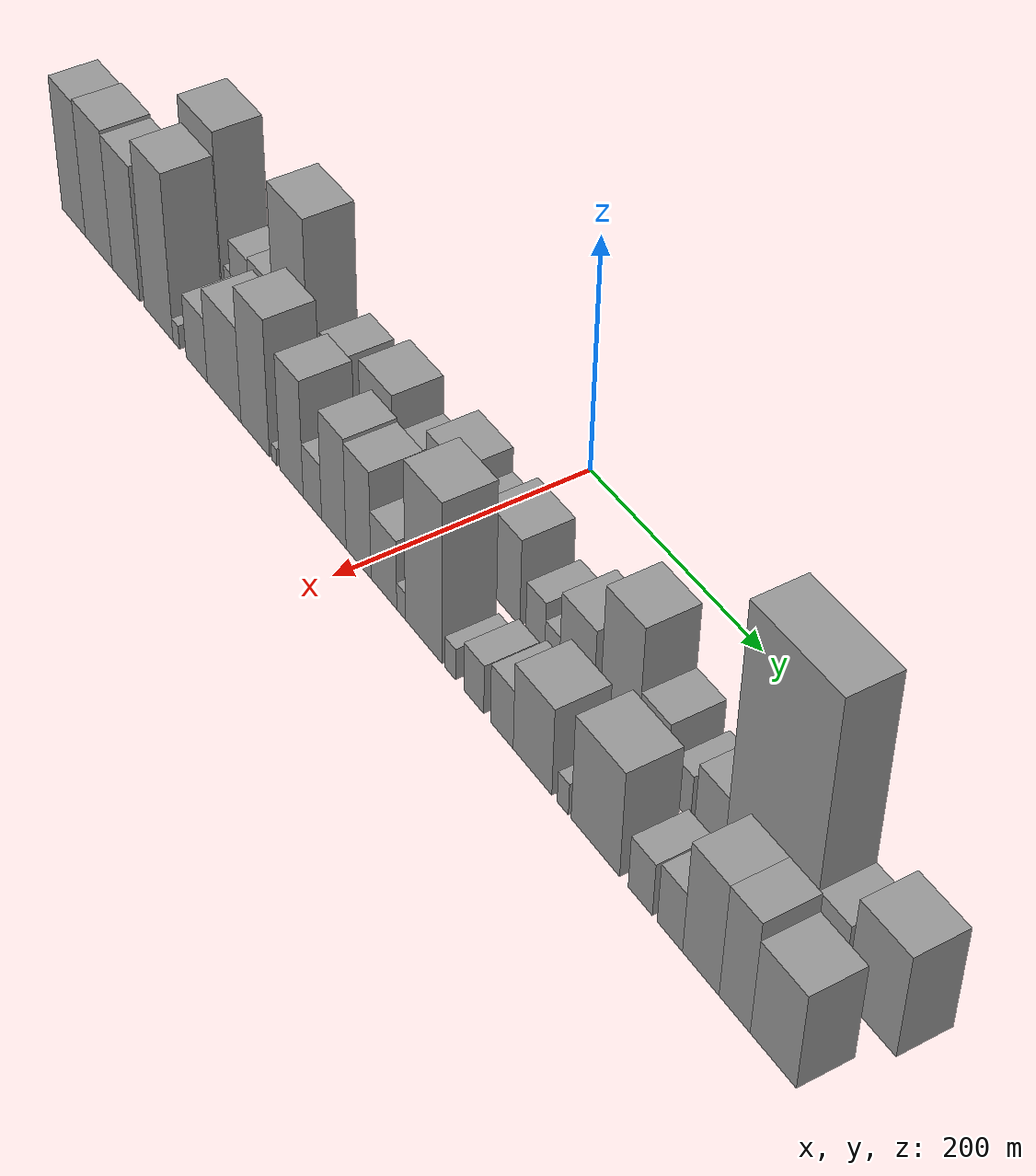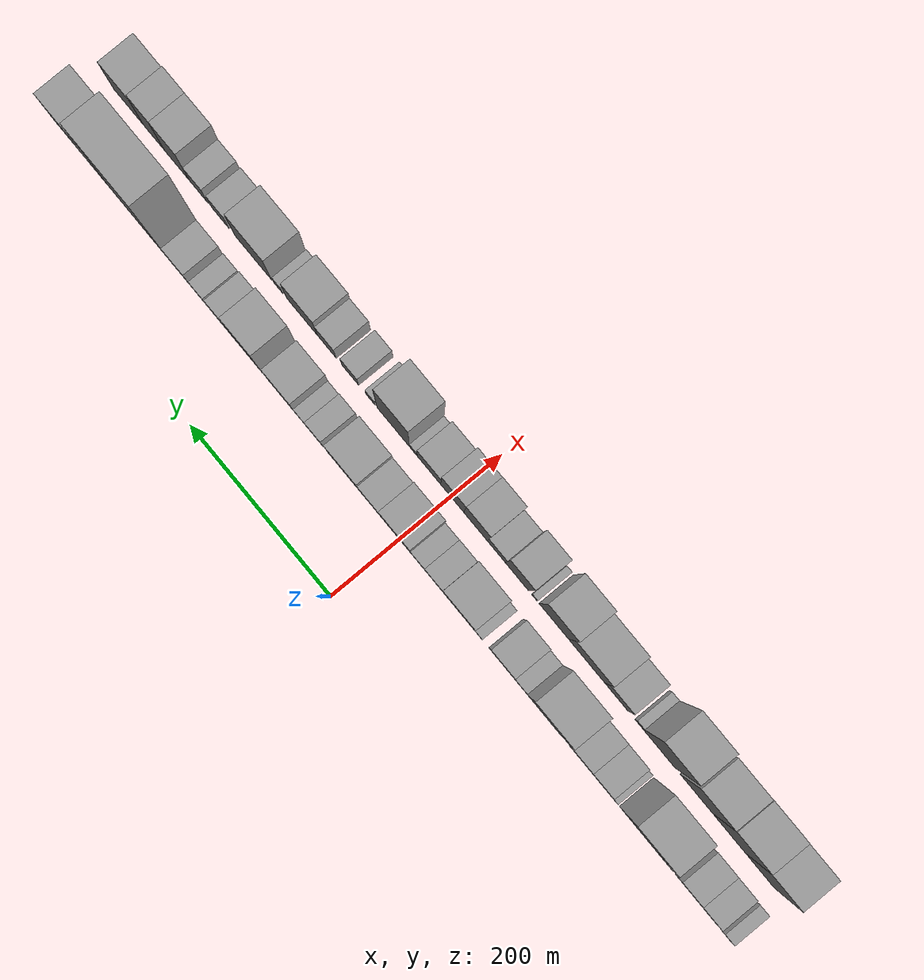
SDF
<sdf version="1.6">
 <world name="default">
  <scene>
   <sky><clouds><speed>12</speed></clouds></sky>
   <ambient>0.4 0.4 0.4 1</ambient>
   <background>0.7 0.7 0.7 1</background>
   <shadows>1</shadows>
  </scene>
  <gravity>0 0 -9.8066</gravity>
  <magnetic_field>6e-06 2.3e-05 -4.2e-05</magnetic_field>
  <physics default="0" name="default_physics" type="ode">
   <ode>
    <solver>
     <type>quick</type>
     <iters>10</iters>
     <sor>1.0</sor>
     <use_dynamic_moi_rescaling>0</use_dynamic_moi_rescaling>
    </solver>
    <constraints>
     <cfm>0</cfm>
     <erp>0.2</erp>
     <contact_max_correcting_vel>100</contact_max_correcting_vel>
     <contact_surface_layer>0.001</contact_surface_layer>
    </constraints>
   </ode>
   <max_step_size>0.004</max_step_size>
   <real_time_factor>1</real_time_factor>
   <real_time_update_rate>250</real_time_update_rate>
  </physics>
  <light name="sun" type="directional">
   <pose>0 0 10 0 0 0</pose>
   <diffuse>0.8 0.8 0.8 1</diffuse>
   <specular>0.2 0.2 0.2 1</specular>
   <attenuation>
    <range>1000</range>
    <constant>0.9</constant>
    <linear>0.01</linear>
    <quadratic>0.001</quadratic>
   </attenuation>
   <direction>-0.5 0.1 -0.9</direction>
  </light>
  <model name="building_1">
   <static>1</static>
   <pose>100.0000 -453.5102 0 0.000000 0.000000 0.000000</pose>
   <link name="link">
    <pose>0 0 13.50 0 0 0</pose>
    <collision name="collision"><geometry><box><size>40.0000 12.9796 27.0000</size></box></geometry></collision>
    <visual name="visual">
     <cast_shadows>0</cast_shadows>
     <geometry><box><size>40.0000 12.9796 27.0000</size></box></geometry>
     <material>
      <script>
       <uri>model://grey_wall/materials/scripts</uri>
       <uri>model://grey_wall/materials/textures</uri>
       <name>vrc/grey_wall</name>
      </script>
     </material>
    </visual>
   </link>
  </model>
  <model name="building_2">
   <static>1</static>
   <pose>100.0000 -425.6688 0 0.000000 0.000000 0.000000</pose>
   <link name="link">
    <pose>0 0 22.50 0 0 0</pose>
    <collision name="collision"><geometry><box><size>40.0000 26.7033 45.0000</size></box></geometry></collision>
    <visual name="visual">
     <cast_shadows>0</cast_shadows>
     <geometry><box><size>40.0000 26.7033 45.0000</size></box></geometry>
     <material>
      <script>
       <uri>model://grey_wall/materials/scripts</uri>
       <uri>model://grey_wall/materials/textures</uri>
       <name>vrc/grey_wall</name>
      </script>
     </material>
    </visual>
   </link>
  </model>
  <model name="building_3">
   <static>1</static>
   <pose>100.0000 -398.4008 0 0.000000 0.000000 0.000000</pose>
   <link name="link">
    <pose>0 0 24.00 0 0 0</pose>
    <collision name="collision"><geometry><box><size>40.0000 27.8327 48.0000</size></box></geometry></collision>
    <visual name="visual">
     <cast_shadows>0</cast_shadows>
     <geometry><box><size>40.0000 27.8327 48.0000</size></box></geometry>
     <material>
      <script>
       <uri>model://grey_wall/materials/scripts</uri>
       <uri>model://grey_wall/materials/textures</uri>
       <name>vrc/grey_wall</name>
      </script>
     </material>
    </visual>
   </link>
  </model>
  <model name="building_4">
   <static>1</static>
   <pose>100.0000 -368.6258 0 0.000000 0.000000 0.000000</pose>
   <link name="link">
    <pose>0 0 15.00 0 0 0</pose>
    <collision name="collision"><geometry><box><size>40.0000 15.7172 30.0000</size></box></geometry></collision>
    <visual name="visual">
     <cast_shadows>0</cast_shadows>
     <geometry><box><size>40.0000 15.7172 30.0000</size></box></geometry>
     <material>
      <script>
       <uri>model://grey_wall/materials/scripts</uri>
       <uri>model://grey_wall/materials/textures</uri>
       <name>vrc/grey_wall</name>
      </script>
     </material>
    </visual>
   </link>
  </model>
  <model name="building_5">
   <static>1</static>
   <pose>100.0000 -334.2858 0 0.000000 0.000000 0.000000</pose>
   <link name="link">
    <pose>0 0 67.50 0 0 0</pose>
    <collision name="collision"><geometry><box><size>40.0000 52.9629 135.0000</size></box></geometry></collision>
    <visual name="visual">
     <cast_shadows>0</cast_shadows>
     <geometry><box><size>40.0000 52.9629 135.0000</size></box></geometry>
     <material>
      <script>
       <uri>model://grey_wall/materials/scripts</uri>
       <uri>model://grey_wall/materials/textures</uri>
       <name>vrc/grey_wall</name>
      </script>
     </material>
    </visual>
   </link>
  </model>
  <model name="building_6">
   <static>1</static>
   <pose>100.0000 -297.6774 0 0.000000 0.000000 0.000000</pose>
   <link name="link">
    <pose>0 0 10.50 0 0 0</pose>
    <collision name="collision"><geometry><box><size>40.0000 10.2538 21.0000</size></box></geometry></collision>
    <visual name="visual">
     <cast_shadows>0</cast_shadows>
     <geometry><box><size>40.0000 10.2538 21.0000</size></box></geometry>
     <material>
      <script>
       <uri>model://grey_wall/materials/scripts</uri>
       <uri>model://grey_wall/materials/textures</uri>
       <name>vrc/grey_wall</name>
      </script>
     </material>
    </visual>
   </link>
  </model>
  <model name="building_7">
   <static>1</static>
   <pose>100.0000 -278.2474 0 0.000000 0.000000 0.000000</pose>
   <link name="link">
    <pose>0 0 25.50 0 0 0</pose>
    <collision name="collision"><geometry><box><size>40.0000 28.6063 51.0000</size></box></geometry></collision>
    <visual name="visual">
     <cast_shadows>0</cast_shadows>
     <geometry><box><size>40.0000 28.6063 51.0000</size></box></geometry>
     <material>
      <script>
       <uri>model://grey_wall/materials/scripts</uri>
       <uri>model://grey_wall/materials/textures</uri>
       <name>vrc/grey_wall</name>
      </script>
     </material>
    </visual>
   </link>
  </model>
  <model name="building_8">
   <static>1</static>
   <pose>100.0000 -250.4310 0 0.000000 0.000000 0.000000</pose>
   <link name="link">
    <pose>0 0 27.00 0 0 0</pose>
    <collision name="collision"><geometry><box><size>40.0000 27.0266 54.0000</size></box></geometry></collision>
    <visual name="visual">
     <cast_shadows>0</cast_shadows>
     <geometry><box><size>40.0000 27.0266 54.0000</size></box></geometry>
     <material>
      <script>
       <uri>model://grey_wall/materials/scripts</uri>
       <uri>model://grey_wall/materials/textures</uri>
       <name>vrc/grey_wall</name>
      </script>
     </material>
    </visual>
   </link>
  </model>
  <model name="building_9">
   <static>1</static>
   <pose>100.0000 -201.9144 0 0.000000 0.000000 0.000000</pose>
   <link name="link">
    <pose>0 0 72.00 0 0 0</pose>
    <collision name="collision"><geometry><box><size>40.0000 50.0067 144.0000</size></box></geometry></collision>
    <visual name="visual">
     <cast_shadows>0</cast_shadows>
     <geometry><box><size>40.0000 50.0067 144.0000</size></box></geometry>
     <material>
      <script>
       <uri>model://grey_wall/materials/scripts</uri>
       <uri>model://grey_wall/materials/textures</uri>
       <name>vrc/grey_wall</name>
      </script>
     </material>
    </visual>
   </link>
  </model>
  <model name="building_10">
   <static>1</static>
   <pose>100.0000 -167.6669 0 0.000000 0.000000 0.000000</pose>
   <link name="link">
    <pose>0 0 18.00 0 0 0</pose>
    <collision name="collision"><geometry><box><size>40.0000 18.4882 36.0000</size></box></geometry></collision>
    <visual name="visual">
     <cast_shadows>0</cast_shadows>
     <geometry><box><size>40.0000 18.4882 36.0000</size></box></geometry>
     <material>
      <script>
       <uri>model://grey_wall/materials/scripts</uri>
       <uri>model://grey_wall/materials/textures</uri>
       <name>vrc/grey_wall</name>
      </script>
     </material>
    </visual>
   </link>
  </model>
  <model name="building_11">
   <static>1</static>
   <pose>100.0000 -142.0239 0 0.000000 0.000000 0.000000</pose>
   <link name="link">
    <pose>0 0 30.00 0 0 0</pose>
    <collision name="collision"><geometry><box><size>40.0000 32.7978 60.0000</size></box></geometry></collision>
    <visual name="visual">
     <cast_shadows>0</cast_shadows>
     <geometry><box><size>40.0000 32.7978 60.0000</size></box></geometry>
     <material>
      <script>
       <uri>model://grey_wall/materials/scripts</uri>
       <uri>model://grey_wall/materials/textures</uri>
       <name>vrc/grey_wall</name>
      </script>
     </material>
    </visual>
   </link>
  </model>
  <model name="building_12">
   <static>1</static>
   <pose>100.0000 -109.8862 0 0.000000 0.000000 0.000000</pose>
   <link name="link">
    <pose>0 0 12.00 0 0 0</pose>
    <collision name="collision"><geometry><box><size>40.0000 11.4776 24.0000</size></box></geometry></collision>
    <visual name="visual">
     <cast_shadows>0</cast_shadows>
     <geometry><box><size>40.0000 11.4776 24.0000</size></box></geometry>
     <material>
      <script>
       <uri>model://grey_wall/materials/scripts</uri>
       <uri>model://grey_wall/materials/textures</uri>
       <name>vrc/grey_wall</name>
      </script>
     </material>
    </visual>
   </link>
  </model>
  <model name="building_13">
   <static>1</static>
   <pose>100.0000 -82.1685 0 0.000000 0.000000 0.000000</pose>
   <link name="link">
    <pose>0 0 37.50 0 0 0</pose>
    <collision name="collision"><geometry><box><size>40.0000 43.9578 75.0000</size></box></geometry></collision>
    <visual name="visual">
     <cast_shadows>0</cast_shadows>
     <geometry><box><size>40.0000 43.9578 75.0000</size></box></geometry>
     <material>
      <script>
       <uri>model://grey_wall/materials/scripts</uri>
       <uri>model://grey_wall/materials/textures</uri>
       <name>vrc/grey_wall</name>
      </script>
     </material>
    </visual>
   </link>
  </model>
  <model name="building_14">
   <static>1</static>
   <pose>100.0000 -47.7498 0 0.000000 0.000000 0.000000</pose>
   <link name="link">
    <pose>0 0 21.00 0 0 0</pose>
    <collision name="collision"><geometry><box><size>40.0000 24.8795 42.0000</size></box></geometry></collision>
    <visual name="visual">
     <cast_shadows>0</cast_shadows>
     <geometry><box><size>40.0000 24.8795 42.0000</size></box></geometry>
     <material>
      <script>
       <uri>model://grey_wall/materials/scripts</uri>
       <uri>model://grey_wall/materials/textures</uri>
       <name>vrc/grey_wall</name>
      </script>
     </material>
    </visual>
   </link>
  </model>
  <model name="building_15">
   <static>1</static>
   <pose>100.0000 -25.5323 0 0.000000 0.000000 0.000000</pose>
   <link name="link">
    <pose>0 0 18.00 0 0 0</pose>
    <collision name="collision"><geometry><box><size>40.0000 19.5555 36.0000</size></box></geometry></collision>
    <visual name="visual">
     <cast_shadows>0</cast_shadows>
     <geometry><box><size>40.0000 19.5555 36.0000</size></box></geometry>
     <material>
      <script>
       <uri>model://grey_wall/materials/scripts</uri>
       <uri>model://grey_wall/materials/textures</uri>
       <name>vrc/grey_wall</name>
      </script>
     </material>
    </visual>
   </link>
  </model>
  <model name="building_16">
   <static>1</static>
   <pose>100.0000 5.6873 0 0.000000 0.000000 0.000000</pose>
   <link name="link">
    <pose>0 0 39.00 0 0 0</pose>
    <collision name="collision"><geometry><box><size>40.0000 42.8835 78.0000</size></box></geometry></collision>
    <visual name="visual">
     <cast_shadows>0</cast_shadows>
     <geometry><box><size>40.0000 42.8835 78.0000</size></box></geometry>
     <material>
      <script>
       <uri>model://grey_wall/materials/scripts</uri>
       <uri>model://grey_wall/materials/textures</uri>
       <name>vrc/grey_wall</name>
      </script>
     </material>
    </visual>
   </link>
  </model>
  <model name="building_17">
   <static>1</static>
   <pose>100.0000 41.9869 0 0.000000 0.000000 0.000000</pose>
   <link name="link">
    <pose>0 0 28.50 0 0 0</pose>
    <collision name="collision"><geometry><box><size>40.0000 29.7157 57.0000</size></box></geometry></collision>
    <visual name="visual">
     <cast_shadows>0</cast_shadows>
     <geometry><box><size>40.0000 29.7157 57.0000</size></box></geometry>
     <material>
      <script>
       <uri>model://grey_wall/materials/scripts</uri>
       <uri>model://grey_wall/materials/textures</uri>
       <name>vrc/grey_wall</name>
      </script>
     </material>
    </visual>
   </link>
  </model>
  <model name="building_18">
   <static>1</static>
   <pose>100.0000 78.9703 0 0.000000 0.000000 0.000000</pose>
   <link name="link">
    <pose>0 0 37.50 0 0 0</pose>
    <collision name="collision"><geometry><box><size>40.0000 44.2512 75.0000</size></box></geometry></collision>
    <visual name="visual">
     <cast_shadows>0</cast_shadows>
     <geometry><box><size>40.0000 44.2512 75.0000</size></box></geometry>
     <material>
      <script>
       <uri>model://grey_wall/materials/scripts</uri>
       <uri>model://grey_wall/materials/textures</uri>
       <name>vrc/grey_wall</name>
      </script>
     </material>
    </visual>
   </link>
  </model>
  <model name="building_19">
   <static>1</static>
   <pose>100.0000 119.3882 0 0.000000 0.000000 0.000000</pose>
   <link name="link">
    <pose>0 0 22.50 0 0 0</pose>
    <collision name="collision"><geometry><box><size>40.0000 22.5846 45.0000</size></box></geometry></collision>
    <visual name="visual">
     <cast_shadows>0</cast_shadows>
     <geometry><box><size>40.0000 22.5846 45.0000</size></box></geometry>
     <material>
      <script>
       <uri>model://grey_wall/materials/scripts</uri>
       <uri>model://grey_wall/materials/textures</uri>
       <name>vrc/grey_wall</name>
      </script>
     </material>
    </visual>
   </link>
  </model>
  <model name="building_20">
   <static>1</static>
   <pose>100.0000 139.2264 0 0.000000 0.000000 0.000000</pose>
   <link name="link">
    <pose>0 0 15.00 0 0 0</pose>
    <collision name="collision"><geometry><box><size>40.0000 17.0919 30.0000</size></box></geometry></collision>
    <visual name="visual">
     <cast_shadows>0</cast_shadows>
     <geometry><box><size>40.0000 17.0919 30.0000</size></box></geometry>
     <material>
      <script>
       <uri>model://grey_wall/materials/scripts</uri>
       <uri>model://grey_wall/materials/textures</uri>
       <name>vrc/grey_wall</name>
      </script>
     </material>
    </visual>
   </link>
  </model>
  <model name="building_21">
   <static>1</static>
   <pose>100.0000 167.3817 0 0.000000 0.000000 0.000000</pose>
   <link name="link">
    <pose>0 0 34.50 0 0 0</pose>
    <collision name="collision"><geometry><box><size>40.0000 39.2186 69.0000</size></box></geometry></collision>
    <visual name="visual">
     <cast_shadows>0</cast_shadows>
     <geometry><box><size>40.0000 39.2186 69.0000</size></box></geometry>
     <material>
      <script>
       <uri>model://grey_wall/materials/scripts</uri>
       <uri>model://grey_wall/materials/textures</uri>
       <name>vrc/grey_wall</name>
      </script>
     </material>
    </visual>
   </link>
  </model>
  <model name="building_22">
   <static>1</static>
   <pose>100.0000 214.9814 0 0.000000 0.000000 0.000000</pose>
   <link name="link">
    <pose>0 0 57.00 0 0 0</pose>
    <collision name="collision"><geometry><box><size>40.0000 41.9810 114.0000</size></box></geometry></collision>
    <visual name="visual">
     <cast_shadows>0</cast_shadows>
     <geometry><box><size>40.0000 41.9810 114.0000</size></box></geometry>
     <material>
      <script>
       <uri>model://grey_wall/materials/scripts</uri>
       <uri>model://grey_wall/materials/textures</uri>
       <name>vrc/grey_wall</name>
      </script>
     </material>
    </visual>
   </link>
  </model>
  <model name="building_23">
   <static>1</static>
   <pose>100.0000 251.5393 0 0.000000 0.000000 0.000000</pose>
   <link name="link">
    <pose>0 0 30.00 0 0 0</pose>
    <collision name="collision"><geometry><box><size>40.0000 31.1348 60.0000</size></box></geometry></collision>
    <visual name="visual">
     <cast_shadows>0</cast_shadows>
     <geometry><box><size>40.0000 31.1348 60.0000</size></box></geometry>
     <material>
      <script>
       <uri>model://grey_wall/materials/scripts</uri>
       <uri>model://grey_wall/materials/textures</uri>
       <name>vrc/grey_wall</name>
      </script>
     </material>
    </visual>
   </link>
  </model>
  <model name="building_24">
   <static>1</static>
   <pose>100.0000 283.1219 0 0.000000 0.000000 0.000000</pose>
   <link name="link">
    <pose>0 0 19.50 0 0 0</pose>
    <collision name="collision"><geometry><box><size>40.0000 20.0305 39.0000</size></box></geometry></collision>
    <visual name="visual">
     <cast_shadows>0</cast_shadows>
     <geometry><box><size>40.0000 20.0305 39.0000</size></box></geometry>
     <material>
      <script>
       <uri>model://grey_wall/materials/scripts</uri>
       <uri>model://grey_wall/materials/textures</uri>
       <name>vrc/grey_wall</name>
      </script>
     </material>
    </visual>
   </link>
  </model>
  <model name="building_25">
   <static>1</static>
   <pose>100.0000 312.4607 0 0.000000 0.000000 0.000000</pose>
   <link name="link">
    <pose>0 0 27.00 0 0 0</pose>
    <collision name="collision"><geometry><box><size>40.0000 30.6471 54.0000</size></box></geometry></collision>
    <visual name="visual">
     <cast_shadows>0</cast_shadows>
     <geometry><box><size>40.0000 30.6471 54.0000</size></box></geometry>
     <material>
      <script>
       <uri>model://grey_wall/materials/scripts</uri>
       <uri>model://grey_wall/materials/textures</uri>
       <name>vrc/grey_wall</name>
      </script>
     </material>
    </visual>
   </link>
  </model>
  <model name="building_26">
   <static>1</static>
   <pose>100.0000 370.7109 0 0.000000 0.000000 0.000000</pose>
   <link name="link">
    <pose>0 0 108.00 0 0 0</pose>
    <collision name="collision"><geometry><box><size>40.0000 85.8532 216.0000</size></box></geometry></collision>
    <visual name="visual">
     <cast_shadows>0</cast_shadows>
     <geometry><box><size>40.0000 85.8532 216.0000</size></box></geometry>
     <material>
      <script>
       <uri>model://grey_wall/materials/scripts</uri>
       <uri>model://grey_wall/materials/textures</uri>
       <name>vrc/grey_wall</name>
      </script>
     </material>
    </visual>
   </link>
  </model>
  <model name="building_27">
   <static>1</static>
   <pose>100.0000 428.7281 0 0.000000 0.000000 0.000000</pose>
   <link name="link">
    <pose>0 0 30.00 0 0 0</pose>
    <collision name="collision"><geometry><box><size>40.0000 30.1812 60.0000</size></box></geometry></collision>
    <visual name="visual">
     <cast_shadows>0</cast_shadows>
     <geometry><box><size>40.0000 30.1812 60.0000</size></box></geometry>
     <material>
      <script>
       <uri>model://grey_wall/materials/scripts</uri>
       <uri>model://grey_wall/materials/textures</uri>
       <name>vrc/grey_wall</name>
      </script>
     </material>
    </visual>
   </link>
  </model>
  <model name="building_28">
   <static>1</static>
   <pose>100.0000 470.3922 0 0.000000 0.000000 0.000000</pose>
   <link name="link">
    <pose>0 0 43.50 0 0 0</pose>
    <collision name="collision"><geometry><box><size>40.0000 47.1470 87.0000</size></box></geometry></collision>
    <visual name="visual">
     <cast_shadows>0</cast_shadows>
     <geometry><box><size>40.0000 47.1470 87.0000</size></box></geometry>
     <material>
      <script>
       <uri>model://grey_wall/materials/scripts</uri>
       <uri>model://grey_wall/materials/textures</uri>
       <name>vrc/grey_wall</name>
      </script>
     </material>
    </visual>
   </link>
  </model>
  <model name="building_29">
   <static>1</static>
   <pose>160.0000 -430.1446 0 0.000000 0.000000 0.000000</pose>
   <link name="link">
    <pose>0 0 60.00 0 0 0</pose>
    <collision name="collision"><geometry><box><size>40.0000 39.7107 120.0000</size></box></geometry></collision>
    <visual name="visual">
     <cast_shadows>0</cast_shadows>
     <geometry><box><size>40.0000 39.7107 120.0000</size></box></geometry>
     <material>
      <script>
       <uri>model://grey_wall/materials/scripts</uri>
       <uri>model://grey_wall/materials/textures</uri>
       <name>vrc/grey_wall</name>
      </script>
     </material>
    </visual>
   </link>
  </model>
  <model name="building_30">
   <static>1</static>
   <pose>160.0000 -387.6719 0 0.000000 0.000000 0.000000</pose>
   <link name="link">
    <pose>0 0 61.50 0 0 0</pose>
    <collision name="collision"><geometry><box><size>40.0000 45.2346 123.0000</size></box></geometry></collision>
    <visual name="visual">
     <cast_shadows>0</cast_shadows>
     <geometry><box><size>40.0000 45.2346 123.0000</size></box></geometry>
     <material>
      <script>
       <uri>model://grey_wall/materials/scripts</uri>
       <uri>model://grey_wall/materials/textures</uri>
       <name>vrc/grey_wall</name>
      </script>
     </material>
    </visual>
   </link>
  </model>
  <model name="building_31">
   <static>1</static>
   <pose>160.0000 -342.6383 0 0.000000 0.000000 0.000000</pose>
   <link name="link">
    <pose>0 0 60.00 0 0 0</pose>
    <collision name="collision"><geometry><box><size>40.0000 44.8327 120.0000</size></box></geometry></collision>
    <visual name="visual">
     <cast_shadows>0</cast_shadows>
     <geometry><box><size>40.0000 44.8327 120.0000</size></box></geometry>
     <material>
      <script>
       <uri>model://grey_wall/materials/scripts</uri>
       <uri>model://grey_wall/materials/textures</uri>
       <name>vrc/grey_wall</name>
      </script>
     </material>
    </visual>
   </link>
  </model>
  <model name="building_32">
   <static>1</static>
   <pose>160.0000 -290.4092 0 0.000000 0.000000 0.000000</pose>
   <link name="link">
    <pose>0 0 73.50 0 0 0</pose>
    <collision name="collision"><geometry><box><size>40.0000 45.6254 147.0000</size></box></geometry></collision>
    <visual name="visual">
     <cast_shadows>0</cast_shadows>
     <geometry><box><size>40.0000 45.6254 147.0000</size></box></geometry>
     <material>
      <script>
       <uri>model://grey_wall/materials/scripts</uri>
       <uri>model://grey_wall/materials/textures</uri>
       <name>vrc/grey_wall</name>
      </script>
     </material>
    </visual>
   </link>
  </model>
  <model name="building_33">
   <static>1</static>
   <pose>160.0000 -262.5299 0 0.000000 0.000000 0.000000</pose>
   <link name="link">
    <pose>0 0 10.50 0 0 0</pose>
    <collision name="collision"><geometry><box><size>40.0000 10.1330 21.0000</size></box></geometry></collision>
    <visual name="visual">
     <cast_shadows>0</cast_shadows>
     <geometry><box><size>40.0000 10.1330 21.0000</size></box></geometry>
     <material>
      <script>
       <uri>model://grey_wall/materials/scripts</uri>
       <uri>model://grey_wall/materials/textures</uri>
       <name>vrc/grey_wall</name>
      </script>
     </material>
    </visual>
   </link>
  </model>
  <model name="building_34">
   <static>1</static>
   <pose>160.0000 -231.2802 0 0.000000 0.000000 0.000000</pose>
   <link name="link">
    <pose>0 0 28.50 0 0 0</pose>
    <collision name="collision"><geometry><box><size>40.0000 32.3664 57.0000</size></box></geometry></collision>
    <visual name="visual">
     <cast_shadows>0</cast_shadows>
     <geometry><box><size>40.0000 32.3664 57.0000</size></box></geometry>
     <material>
      <script>
       <uri>model://grey_wall/materials/scripts</uri>
       <uri>model://grey_wall/materials/textures</uri>
       <name>vrc/grey_wall</name>
      </script>
     </material>
    </visual>
   </link>
  </model>
  <model name="building_35">
   <static>1</static>
   <pose>160.0000 -189.9371 0 0.000000 0.000000 0.000000</pose>
   <link name="link">
    <pose>0 0 42.00 0 0 0</pose>
    <collision name="collision"><geometry><box><size>40.0000 50.3199 84.0000</size></box></geometry></collision>
    <visual name="visual">
     <cast_shadows>0</cast_shadows>
     <geometry><box><size>40.0000 50.3199 84.0000</size></box></geometry>
     <material>
      <script>
       <uri>model://grey_wall/materials/scripts</uri>
       <uri>model://grey_wall/materials/textures</uri>
       <name>vrc/grey_wall</name>
      </script>
     </material>
    </visual>
   </link>
  </model>
  <model name="building_36">
   <static>1</static>
   <pose>160.0000 -144.2736 0 0.000000 0.000000 0.000000</pose>
   <link name="link">
    <pose>0 0 60.00 0 0 0</pose>
    <collision name="collision"><geometry><box><size>40.0000 41.0072 120.0000</size></box></geometry></collision>
    <visual name="visual">
     <cast_shadows>0</cast_shadows>
     <geometry><box><size>40.0000 41.0072 120.0000</size></box></geometry>
     <material>
      <script>
       <uri>model://grey_wall/materials/scripts</uri>
       <uri>model://grey_wall/materials/textures</uri>
       <name>vrc/grey_wall</name>
      </script>
     </material>
    </visual>
   </link>
  </model>
  <model name="building_37">
   <static>1</static>
   <pose>160.0000 -117.0435 0 0.000000 0.000000 0.000000</pose>
   <link name="link">
    <pose>0 0 7.50 0 0 0</pose>
    <collision name="collision"><geometry><box><size>40.0000 7.4530 15.0000</size></box></geometry></collision>
    <visual name="visual">
     <cast_shadows>0</cast_shadows>
     <geometry><box><size>40.0000 7.4530 15.0000</size></box></geometry>
     <material>
      <script>
       <uri>model://grey_wall/materials/scripts</uri>
       <uri>model://grey_wall/materials/textures</uri>
       <name>vrc/grey_wall</name>
      </script>
     </material>
    </visual>
   </link>
  </model>
  <model name="building_38">
   <static>1</static>
   <pose>160.0000 -92.8126 0 0.000000 0.000000 0.000000</pose>
   <link name="link">
    <pose>0 0 51.00 0 0 0</pose>
    <collision name="collision"><geometry><box><size>40.0000 33.0088 102.0000</size></box></geometry></collision>
    <visual name="visual">
     <cast_shadows>0</cast_shadows>
     <geometry><box><size>40.0000 33.0088 102.0000</size></box></geometry>
     <material>
      <script>
       <uri>model://grey_wall/materials/scripts</uri>
       <uri>model://grey_wall/materials/textures</uri>
       <name>vrc/grey_wall</name>
      </script>
     </material>
    </visual>
   </link>
  </model>
  <model name="building_39">
   <static>1</static>
   <pose>160.0000 -63.7380 0 0.000000 0.000000 0.000000</pose>
   <link name="link">
    <pose>0 0 24.00 0 0 0</pose>
    <collision name="collision"><geometry><box><size>40.0000 25.1404 48.0000</size></box></geometry></collision>
    <visual name="visual">
     <cast_shadows>0</cast_shadows>
     <geometry><box><size>40.0000 25.1404 48.0000</size></box></geometry>
     <material>
      <script>
       <uri>model://grey_wall/materials/scripts</uri>
       <uri>model://grey_wall/materials/textures</uri>
       <name>vrc/grey_wall</name>
      </script>
     </material>
    </visual>
   </link>
  </model>
  <model name="building_40">
   <static>1</static>
   <pose>160.0000 -34.6595 0 0.000000 0.000000 0.000000</pose>
   <link name="link">
    <pose>0 0 48.00 0 0 0</pose>
    <collision name="collision"><geometry><box><size>40.0000 33.0166 96.0000</size></box></geometry></collision>
    <visual name="visual">
     <cast_shadows>0</cast_shadows>
     <geometry><box><size>40.0000 33.0166 96.0000</size></box></geometry>
     <material>
      <script>
       <uri>model://grey_wall/materials/scripts</uri>
       <uri>model://grey_wall/materials/textures</uri>
       <name>vrc/grey_wall</name>
      </script>
     </material>
    </visual>
   </link>
  </model>
  <model name="building_41">
   <static>1</static>
   <pose>160.0000 -1.7504 0 0.000000 0.000000 0.000000</pose>
   <link name="link">
    <pose>0 0 46.50 0 0 0</pose>
    <collision name="collision"><geometry><box><size>40.0000 32.8015 93.0000</size></box></geometry></collision>
    <visual name="visual">
     <cast_shadows>0</cast_shadows>
     <geometry><box><size>40.0000 32.8015 93.0000</size></box></geometry>
     <material>
      <script>
       <uri>model://grey_wall/materials/scripts</uri>
       <uri>model://grey_wall/materials/textures</uri>
       <name>vrc/grey_wall</name>
      </script>
     </material>
    </visual>
   </link>
  </model>
  <model name="building_42">
   <static>1</static>
   <pose>160.0000 31.2134 0 0.000000 0.000000 0.000000</pose>
   <link name="link">
    <pose>0 0 30.00 0 0 0</pose>
    <collision name="collision"><geometry><box><size>40.0000 33.1262 60.0000</size></box></geometry></collision>
    <visual name="visual">
     <cast_shadows>0</cast_shadows>
     <geometry><box><size>40.0000 33.1262 60.0000</size></box></geometry>
     <material>
      <script>
       <uri>model://grey_wall/materials/scripts</uri>
       <uri>model://grey_wall/materials/textures</uri>
       <name>vrc/grey_wall</name>
      </script>
     </material>
    </visual>
   </link>
  </model>
  <model name="building_43">
   <static>1</static>
   <pose>160.0000 53.2136 0 0.000000 0.000000 0.000000</pose>
   <link name="link">
    <pose>0 0 12.00 0 0 0</pose>
    <collision name="collision"><geometry><box><size>40.0000 10.8741 24.0000</size></box></geometry></collision>
    <visual name="visual">
     <cast_shadows>0</cast_shadows>
     <geometry><box><size>40.0000 10.8741 24.0000</size></box></geometry>
     <material>
      <script>
       <uri>model://grey_wall/materials/scripts</uri>
       <uri>model://grey_wall/materials/textures</uri>
       <name>vrc/grey_wall</name>
      </script>
     </material>
    </visual>
   </link>
  </model>
  <model name="building_44">
   <static>1</static>
   <pose>160.0000 81.5214 0 0.000000 0.000000 0.000000</pose>
   <link name="link">
    <pose>0 0 69.00 0 0 0</pose>
    <collision name="collision"><geometry><box><size>40.0000 45.7415 138.0000</size></box></geometry></collision>
    <visual name="visual">
     <cast_shadows>0</cast_shadows>
     <geometry><box><size>40.0000 45.7415 138.0000</size></box></geometry>
     <material>
      <script>
       <uri>model://grey_wall/materials/scripts</uri>
       <uri>model://grey_wall/materials/textures</uri>
       <name>vrc/grey_wall</name>
      </script>
     </material>
    </visual>
   </link>
  </model>
  <model name="building_45">
   <static>1</static>
   <pose>160.0000 114.0788 0 0.000000 0.000000 0.000000</pose>
   <link name="link">
    <pose>0 0 13.50 0 0 0</pose>
    <collision name="collision"><geometry><box><size>40.0000 13.3734 27.0000</size></box></geometry></collision>
    <visual name="visual">
     <cast_shadows>0</cast_shadows>
     <geometry><box><size>40.0000 13.3734 27.0000</size></box></geometry>
     <material>
      <script>
       <uri>model://grey_wall/materials/scripts</uri>
       <uri>model://grey_wall/materials/textures</uri>
       <name>vrc/grey_wall</name>
      </script>
     </material>
    </visual>
   </link>
  </model>
  <model name="building_46">
   <static>1</static>
   <pose>160.0000 142.6858 0 0.000000 0.000000 0.000000</pose>
   <link name="link">
    <pose>0 0 21.00 0 0 0</pose>
    <collision name="collision"><geometry><box><size>40.0000 23.8406 42.0000</size></box></geometry></collision>
    <visual name="visual">
     <cast_shadows>0</cast_shadows>
     <geometry><box><size>40.0000 23.8406 42.0000</size></box></geometry>
     <material>
      <script>
       <uri>model://grey_wall/materials/scripts</uri>
       <uri>model://grey_wall/materials/textures</uri>
       <name>vrc/grey_wall</name>
      </script>
     </material>
    </visual>
   </link>
  </model>
  <model name="building_47">
   <static>1</static>
   <pose>160.0000 175.8532 0 0.000000 0.000000 0.000000</pose>
   <link name="link">
    <pose>0 0 25.50 0 0 0</pose>
    <collision name="collision"><geometry><box><size>40.0000 26.4943 51.0000</size></box></geometry></collision>
    <visual name="visual">
     <cast_shadows>0</cast_shadows>
     <geometry><box><size>40.0000 26.4943 51.0000</size></box></geometry>
     <material>
      <script>
       <uri>model://grey_wall/materials/scripts</uri>
       <uri>model://grey_wall/materials/textures</uri>
       <name>vrc/grey_wall</name>
      </script>
     </material>
    </visual>
   </link>
  </model>
  <model name="building_48">
   <static>1</static>
   <pose>160.0000 211.1092 0 0.000000 0.000000 0.000000</pose>
   <link name="link">
    <pose>0 0 37.50 0 0 0</pose>
    <collision name="collision"><geometry><box><size>40.0000 44.0176 75.0000</size></box></geometry></collision>
    <visual name="visual">
     <cast_shadows>0</cast_shadows>
     <geometry><box><size>40.0000 44.0176 75.0000</size></box></geometry>
     <material>
      <script>
       <uri>model://grey_wall/materials/scripts</uri>
       <uri>model://grey_wall/materials/textures</uri>
       <name>vrc/grey_wall</name>
      </script>
     </material>
    </visual>
   </link>
  </model>
  <model name="building_49">
   <static>1</static>
   <pose>160.0000 245.3061 0 0.000000 0.000000 0.000000</pose>
   <link name="link">
    <pose>0 0 13.50 0 0 0</pose>
    <collision name="collision"><geometry><box><size>40.0000 12.3761 27.0000</size></box></geometry></collision>
    <visual name="visual">
     <cast_shadows>0</cast_shadows>
     <geometry><box><size>40.0000 12.3761 27.0000</size></box></geometry>
     <material>
      <script>
       <uri>model://grey_wall/materials/scripts</uri>
       <uri>model://grey_wall/materials/textures</uri>
       <name>vrc/grey_wall</name>
      </script>
     </material>
    </visual>
   </link>
  </model>
  <model name="building_50">
   <static>1</static>
   <pose>160.0000 280.7860 0 0.000000 0.000000 0.000000</pose>
   <link name="link">
    <pose>0 0 45.00 0 0 0</pose>
    <collision name="collision"><geometry><box><size>40.0000 52.5837 90.0000</size></box></geometry></collision>
    <visual name="visual">
     <cast_shadows>0</cast_shadows>
     <geometry><box><size>40.0000 52.5837 90.0000</size></box></geometry>
     <material>
      <script>
       <uri>model://grey_wall/materials/scripts</uri>
       <uri>model://grey_wall/materials/textures</uri>
       <name>vrc/grey_wall</name>
      </script>
     </material>
    </visual>
   </link>
  </model>
  <model name="building_51">
   <static>1</static>
   <pose>160.0000 328.7192 0 0.000000 0.000000 0.000000</pose>
   <link name="link">
    <pose>0 0 22.50 0 0 0</pose>
    <collision name="collision"><geometry><box><size>40.0000 25.2826 45.0000</size></box></geometry></collision>
    <visual name="visual">
     <cast_shadows>0</cast_shadows>
     <geometry><box><size>40.0000 25.2826 45.0000</size></box></geometry>
     <material>
      <script>
       <uri>model://grey_wall/materials/scripts</uri>
       <uri>model://grey_wall/materials/textures</uri>
       <name>vrc/grey_wall</name>
      </script>
     </material>
    </visual>
   </link>
  </model>
  <model name="building_52">
   <static>1</static>
   <pose>160.0000 359.2655 0 0.000000 0.000000 0.000000</pose>
   <link name="link">
    <pose>0 0 25.50 0 0 0</pose>
    <collision name="collision"><geometry><box><size>40.0000 25.8099 51.0000</size></box></geometry></collision>
    <visual name="visual">
     <cast_shadows>0</cast_shadows>
     <geometry><box><size>40.0000 25.8099 51.0000</size></box></geometry>
     <material>
      <script>
       <uri>model://grey_wall/materials/scripts</uri>
       <uri>model://grey_wall/materials/textures</uri>
       <name>vrc/grey_wall</name>
      </script>
     </material>
    </visual>
   </link>
  </model>
  <model name="building_53">
   <static>1</static>
   <pose>160.0000 390.4031 0 0.000000 0.000000 0.000000</pose>
   <link name="link">
    <pose>0 0 48.00 0 0 0</pose>
    <collision name="collision"><geometry><box><size>40.0000 36.4654 96.0000</size></box></geometry></collision>
    <visual name="visual">
     <cast_shadows>0</cast_shadows>
     <geometry><box><size>40.0000 36.4654 96.0000</size></box></geometry>
     <material>
      <script>
       <uri>model://grey_wall/materials/scripts</uri>
       <uri>model://grey_wall/materials/textures</uri>
       <name>vrc/grey_wall</name>
      </script>
     </material>
    </visual>
   </link>
  </model>
  <model name="building_54">
   <static>1</static>
   <pose>160.0000 423.7771 0 0.000000 0.000000 0.000000</pose>
   <link name="link">
    <pose>0 0 48.00 0 0 0</pose>
    <collision name="collision"><geometry><box><size>40.0000 30.2825 96.0000</size></box></geometry></collision>
    <visual name="visual">
     <cast_shadows>0</cast_shadows>
     <geometry><box><size>40.0000 30.2825 96.0000</size></box></geometry>
     <material>
      <script>
       <uri>model://grey_wall/materials/scripts</uri>
       <uri>model://grey_wall/materials/textures</uri>
       <name>vrc/grey_wall</name>
      </script>
     </material>
    </visual>
   </link>
  </model>
  <model name="building_55">
   <static>1</static>
   <pose>160.0000 460.7535 0 0.000000 0.000000 0.000000</pose>
   <link name="link">
    <pose>0 0 40.50 0 0 0</pose>
    <collision name="collision"><geometry><box><size>40.0000 43.6704 81.0000</size></box></geometry></collision>
    <visual name="visual">
     <cast_shadows>0</cast_shadows>
     <geometry><box><size>40.0000 43.6704 81.0000</size></box></geometry>
     <material>
      <script>
       <uri>model://grey_wall/materials/scripts</uri>
       <uri>model://grey_wall/materials/textures</uri>
       <name>vrc/grey_wall</name>
      </script>
     </material>
    </visual>
   </link>
  </model>
 </world>
</sdf>
